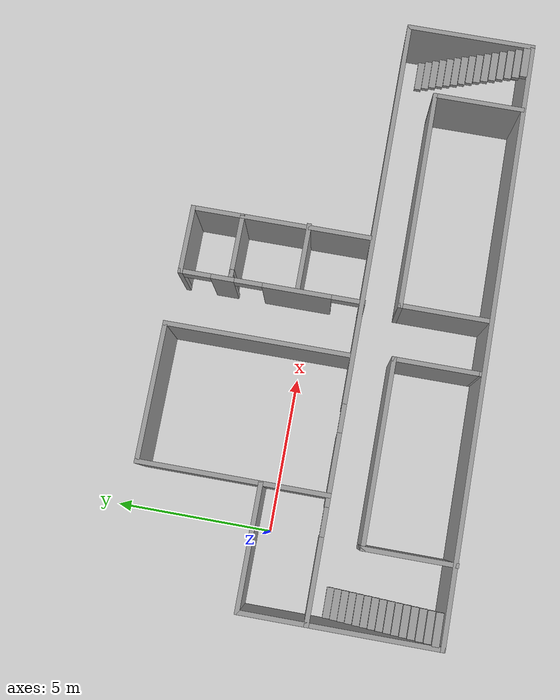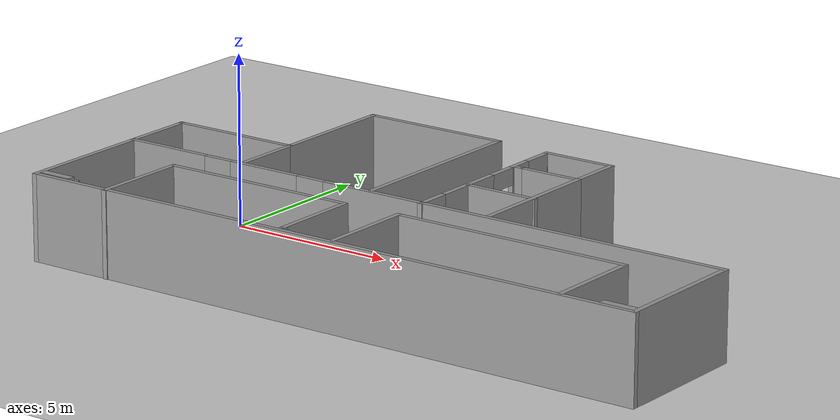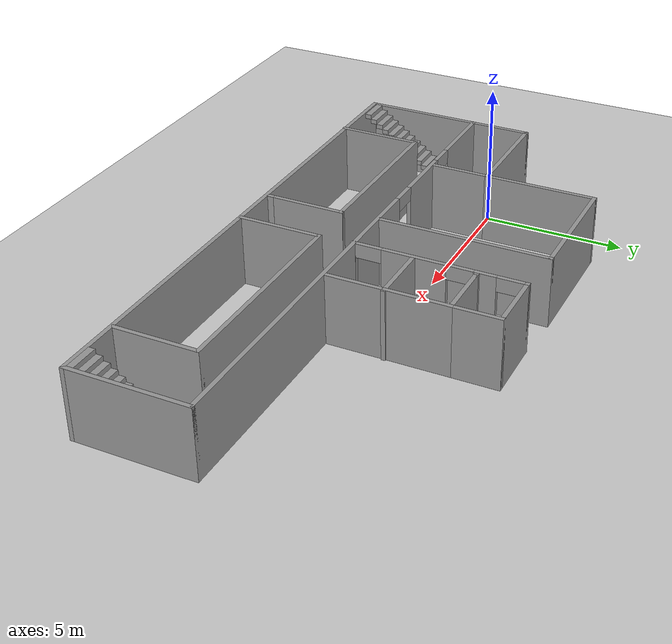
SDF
<?xml version="1.0" ?>
<sdf version="1.4">
  <world name="default">
    <!-- A global light source -->
    <include>
      <uri>model://sun</uri>
    </include>
    <!-- A ground plane -->
    <include>
      <uri>model://ground_plane</uri>
    </include>

    <include>
      <uri>model://LS401</uri>
    </include>

    <!-- Own physics settings to speed up simulation -->
    <physics type='ode'>
      <max_step_size>0.01</max_step_size>
      <real_time_factor>1</real_time_factor>
      <real_time_update_rate>100</real_time_update_rate>
      <gravity>0 0 -9.8</gravity>
    </physics>
  </world>
</sdf>

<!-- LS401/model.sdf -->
<sdf version='1.6'>
  <model name='LS401'>
    <pose frame=''>7.2294 -0.740411 0 0 -0 0</pose>
    <link name='Stairs_0'>
      <visual name='Stairs_0_Visual_0'>
        <pose frame=''>-9.12776 -1.50524 0.083333 0 -0 0</pose>
        <geometry>
          <box>
            <size>1 0.233333 0.166667</size>
          </box>
        </geometry>
        <material>
          <script>
            <uri>file://media/materials/scripts/gazebo.material</uri>
            <name>Gazebo/Grey</name>
          </script>
          <ambient>1 1 1 1</ambient>
        </material>
      </visual>
      <collision name='Stairs_0_Collision_0'>
        <geometry>
          <box>
            <size>1 0.233333 0.166667</size>
          </box>
        </geometry>
        <pose frame=''>-9.12776 -1.50524 0.083333 0 -0 0</pose>
      </collision>
      <visual name='Stairs_0_Visual_1'>
        <pose frame=''>-9.12776 -1.73857 0.25 0 -0 0</pose>
        <geometry>
          <box>
            <size>1 0.233333 0.166667</size>
          </box>
        </geometry>
        <material>
          <script>
            <uri>file://media/materials/scripts/gazebo.material</uri>
            <name>Gazebo/Grey</name>
          </script>
          <ambient>1 1 1 1</ambient>
        </material>
      </visual>
      <collision name='Stairs_0_Collision_1'>
        <geometry>
          <box>
            <size>1 0.233333 0.166667</size>
          </box>
        </geometry>
        <pose frame=''>-9.12776 -1.73857 0.25 0 -0 0</pose>
      </collision>
      <visual name='Stairs_0_Visual_2'>
        <pose frame=''>-9.12776 -1.9719 0.416667 0 -0 0</pose>
        <geometry>
          <box>
            <size>1 0.233333 0.166667</size>
          </box>
        </geometry>
        <material>
          <script>
            <uri>file://media/materials/scripts/gazebo.material</uri>
            <name>Gazebo/Grey</name>
          </script>
          <ambient>1 1 1 1</ambient>
        </material>
      </visual>
      <collision name='Stairs_0_Collision_2'>
        <geometry>
          <box>
            <size>1 0.233333 0.166667</size>
          </box>
        </geometry>
        <pose frame=''>-9.12776 -1.9719 0.416667 0 -0 0</pose>
      </collision>
      <visual name='Stairs_0_Visual_3'>
        <pose frame=''>-9.12776 -2.20524 0.583333 0 -0 0</pose>
        <geometry>
          <box>
            <size>1 0.233333 0.166667</size>
          </box>
        </geometry>
        <material>
          <script>
            <uri>file://media/materials/scripts/gazebo.material</uri>
            <name>Gazebo/Grey</name>
          </script>
          <ambient>1 1 1 1</ambient>
        </material>
      </visual>
      <collision name='Stairs_0_Collision_3'>
        <geometry>
          <box>
            <size>1 0.233333 0.166667</size>
          </box>
        </geometry>
        <pose frame=''>-9.12776 -2.20524 0.583333 0 -0 0</pose>
      </collision>
      <visual name='Stairs_0_Visual_4'>
        <pose frame=''>-9.12776 -2.43857 0.75 0 -0 0</pose>
        <geometry>
          <box>
            <size>1 0.233333 0.166667</size>
          </box>
        </geometry>
        <material>
          <script>
            <uri>file://media/materials/scripts/gazebo.material</uri>
            <name>Gazebo/Grey</name>
          </script>
          <ambient>1 1 1 1</ambient>
        </material>
      </visual>
      <collision name='Stairs_0_Collision_4'>
        <geometry>
          <box>
            <size>1 0.233333 0.166667</size>
          </box>
        </geometry>
        <pose frame=''>-9.12776 -2.43857 0.75 0 -0 0</pose>
      </collision>
      <visual name='Stairs_0_Visual_5'>
        <pose frame=''>-9.12776 -2.6719 0.916667 0 -0 0</pose>
        <geometry>
          <box>
            <size>1 0.233333 0.166667</size>
          </box>
        </geometry>
        <material>
          <script>
            <uri>file://media/materials/scripts/gazebo.material</uri>
            <name>Gazebo/Grey</name>
          </script>
          <ambient>1 1 1 1</ambient>
        </material>
      </visual>
      <collision name='Stairs_0_Collision_5'>
        <geometry>
          <box>
            <size>1 0.233333 0.166667</size>
          </box>
        </geometry>
        <pose frame=''>-9.12776 -2.6719 0.916667 0 -0 0</pose>
      </collision>
      <visual name='Stairs_0_Visual_6'>
        <pose frame=''>-9.12776 -2.90524 1.08333 0 -0 0</pose>
        <geometry>
          <box>
            <size>1 0.233333 0.166667</size>
          </box>
        </geometry>
        <material>
          <script>
            <uri>file://media/materials/scripts/gazebo.material</uri>
            <name>Gazebo/Grey</name>
          </script>
          <ambient>1 1 1 1</ambient>
        </material>
      </visual>
      <collision name='Stairs_0_Collision_6'>
        <geometry>
          <box>
            <size>1 0.233333 0.166667</size>
          </box>
        </geometry>
        <pose frame=''>-9.12776 -2.90524 1.08333 0 -0 0</pose>
      </collision>
      <visual name='Stairs_0_Visual_7'>
        <pose frame=''>-9.12776 -3.13857 1.25 0 -0 0</pose>
        <geometry>
          <box>
            <size>1 0.233333 0.166667</size>
          </box>
        </geometry>
        <material>
          <script>
            <uri>file://media/materials/scripts/gazebo.material</uri>
            <name>Gazebo/Grey</name>
          </script>
          <ambient>1 1 1 1</ambient>
        </material>
      </visual>
      <collision name='Stairs_0_Collision_7'>
        <geometry>
          <box>
            <size>1 0.233333 0.166667</size>
          </box>
        </geometry>
        <pose frame=''>-9.12776 -3.13857 1.25 0 -0 0</pose>
      </collision>
      <visual name='Stairs_0_Visual_8'>
        <pose frame=''>-9.12776 -3.3719 1.41667 0 -0 0</pose>
        <geometry>
          <box>
            <size>1 0.233333 0.166667</size>
          </box>
        </geometry>
        <material>
          <script>
            <uri>file://media/materials/scripts/gazebo.material</uri>
            <name>Gazebo/Grey</name>
          </script>
          <ambient>1 1 1 1</ambient>
        </material>
      </visual>
      <collision name='Stairs_0_Collision_8'>
        <geometry>
          <box>
            <size>1 0.233333 0.166667</size>
          </box>
        </geometry>
        <pose frame=''>-9.12776 -3.3719 1.41667 0 -0 0</pose>
      </collision>
      <visual name='Stairs_0_Visual_9'>
        <pose frame=''>-9.12776 -3.60524 1.58333 0 -0 0</pose>
        <geometry>
          <box>
            <size>1 0.233333 0.166667</size>
          </box>
        </geometry>
        <material>
          <script>
            <uri>file://media/materials/scripts/gazebo.material</uri>
            <name>Gazebo/Grey</name>
          </script>
          <ambient>1 1 1 1</ambient>
        </material>
      </visual>
      <collision name='Stairs_0_Collision_9'>
        <geometry>
          <box>
            <size>1 0.233333 0.166667</size>
          </box>
        </geometry>
        <pose frame=''>-9.12776 -3.60524 1.58333 0 -0 0</pose>
      </collision>
      <visual name='Stairs_0_Visual_10'>
        <pose frame=''>-9.12776 -3.83857 1.75 0 -0 0</pose>
        <geometry>
          <box>
            <size>1 0.233333 0.166667</size>
          </box>
        </geometry>
        <material>
          <script>
            <uri>file://media/materials/scripts/gazebo.material</uri>
            <name>Gazebo/Grey</name>
          </script>
          <ambient>1 1 1 1</ambient>
        </material>
      </visual>
      <collision name='Stairs_0_Collision_10'>
        <geometry>
          <box>
            <size>1 0.233333 0.166667</size>
          </box>
        </geometry>
        <pose frame=''>-9.12776 -3.83857 1.75 0 -0 0</pose>
      </collision>
      <visual name='Stairs_0_Visual_11'>
        <pose frame=''>-9.12776 -4.0719 1.91667 0 -0 0</pose>
        <geometry>
          <box>
            <size>1 0.233333 0.166667</size>
          </box>
        </geometry>
        <material>
          <script>
            <uri>file://media/materials/scripts/gazebo.material</uri>
            <name>Gazebo/Grey</name>
          </script>
          <ambient>1 1 1 1</ambient>
        </material>
      </visual>
      <collision name='Stairs_0_Collision_11'>
        <geometry>
          <box>
            <size>1 0.233333 0.166667</size>
          </box>
        </geometry>
        <pose frame=''>-9.12776 -4.0719 1.91667 0 -0 0</pose>
      </collision>
      <visual name='Stairs_0_Visual_12'>
        <pose frame=''>-9.12776 -4.30524 2.08333 0 -0 0</pose>
        <geometry>
          <box>
            <size>1 0.233333 0.166667</size>
          </box>
        </geometry>
        <material>
          <script>
            <uri>file://media/materials/scripts/gazebo.material</uri>
            <name>Gazebo/Grey</name>
          </script>
          <ambient>1 1 1 1</ambient>
        </material>
      </visual>
      <collision name='Stairs_0_Collision_12'>
        <geometry>
          <box>
            <size>1 0.233333 0.166667</size>
          </box>
        </geometry>
        <pose frame=''>-9.12776 -4.30524 2.08333 0 -0 0</pose>
      </collision>
      <visual name='Stairs_0_Visual_13'>
        <pose frame=''>-9.12776 -4.53857 2.25 0 -0 0</pose>
        <geometry>
          <box>
            <size>1 0.233333 0.166667</size>
          </box>
        </geometry>
        <material>
          <script>
            <uri>file://media/materials/scripts/gazebo.material</uri>
            <name>Gazebo/Grey</name>
          </script>
          <ambient>1 1 1 1</ambient>
        </material>
      </visual>
      <collision name='Stairs_0_Collision_13'>
        <geometry>
          <box>
            <size>1 0.233333 0.166667</size>
          </box>
        </geometry>
        <pose frame=''>-9.12776 -4.53857 2.25 0 -0 0</pose>
      </collision>
      <visual name='Stairs_0_Visual_14'>
        <pose frame=''>-9.12776 -4.7719 2.41667 0 -0 0</pose>
        <geometry>
          <box>
            <size>1 0.233333 0.166667</size>
          </box>
        </geometry>
        <material>
          <script>
            <uri>file://media/materials/scripts/gazebo.material</uri>
            <name>Gazebo/Grey</name>
          </script>
          <ambient>1 1 1 1</ambient>
        </material>
      </visual>
      <collision name='Stairs_0_Collision_14'>
        <geometry>
          <box>
            <size>1 0.233333 0.166667</size>
          </box>
        </geometry>
        <pose frame=''>-9.12776 -4.7719 2.41667 0 -0 0</pose>
      </collision>
    </link>
    <link name='Stairs_1'>
      <visual name='Stairs_1_Visual_0'>
        <pose frame=''>9.09916 -1.57463 0.083333 0 -0 0</pose>
        <geometry>
          <box>
            <size>1 0.233333 0.166667</size>
          </box>
        </geometry>
        <material>
          <script>
            <uri>file://media/materials/scripts/gazebo.material</uri>
            <name>Gazebo/Grey</name>
          </script>
          <ambient>1 1 1 1</ambient>
        </material>
      </visual>
      <collision name='Stairs_1_Collision_0'>
        <geometry>
          <box>
            <size>1 0.233333 0.166667</size>
          </box>
        </geometry>
        <pose frame=''>9.09916 -1.57463 0.083333 0 -0 0</pose>
      </collision>
      <visual name='Stairs_1_Visual_1'>
        <pose frame=''>9.09916 -1.80796 0.25 0 -0 0</pose>
        <geometry>
          <box>
            <size>1 0.233333 0.166667</size>
          </box>
        </geometry>
        <material>
          <script>
            <uri>file://media/materials/scripts/gazebo.material</uri>
            <name>Gazebo/Grey</name>
          </script>
          <ambient>1 1 1 1</ambient>
        </material>
      </visual>
      <collision name='Stairs_1_Collision_1'>
        <geometry>
          <box>
            <size>1 0.233333 0.166667</size>
          </box>
        </geometry>
        <pose frame=''>9.09916 -1.80796 0.25 0 -0 0</pose>
      </collision>
      <visual name='Stairs_1_Visual_2'>
        <pose frame=''>9.09916 -2.04129 0.416667 0 -0 0</pose>
        <geometry>
          <box>
            <size>1 0.233333 0.166667</size>
          </box>
        </geometry>
        <material>
          <script>
            <uri>file://media/materials/scripts/gazebo.material</uri>
            <name>Gazebo/Grey</name>
          </script>
          <ambient>1 1 1 1</ambient>
        </material>
      </visual>
      <collision name='Stairs_1_Collision_2'>
        <geometry>
          <box>
            <size>1 0.233333 0.166667</size>
          </box>
        </geometry>
        <pose frame=''>9.09916 -2.04129 0.416667 0 -0 0</pose>
      </collision>
      <visual name='Stairs_1_Visual_3'>
        <pose frame=''>9.09916 -2.27463 0.583333 0 -0 0</pose>
        <geometry>
          <box>
            <size>1 0.233333 0.166667</size>
          </box>
        </geometry>
        <material>
          <script>
            <uri>file://media/materials/scripts/gazebo.material</uri>
            <name>Gazebo/Grey</name>
          </script>
          <ambient>1 1 1 1</ambient>
        </material>
      </visual>
      <collision name='Stairs_1_Collision_3'>
        <geometry>
          <box>
            <size>1 0.233333 0.166667</size>
          </box>
        </geometry>
        <pose frame=''>9.09916 -2.27463 0.583333 0 -0 0</pose>
      </collision>
      <visual name='Stairs_1_Visual_4'>
        <pose frame=''>9.09916 -2.50796 0.75 0 -0 0</pose>
        <geometry>
          <box>
            <size>1 0.233333 0.166667</size>
          </box>
        </geometry>
        <material>
          <script>
            <uri>file://media/materials/scripts/gazebo.material</uri>
            <name>Gazebo/Grey</name>
          </script>
          <ambient>1 1 1 1</ambient>
        </material>
      </visual>
      <collision name='Stairs_1_Collision_4'>
        <geometry>
          <box>
            <size>1 0.233333 0.166667</size>
          </box>
        </geometry>
        <pose frame=''>9.09916 -2.50796 0.75 0 -0 0</pose>
      </collision>
      <visual name='Stairs_1_Visual_5'>
        <pose frame=''>9.09916 -2.7413 0.916667 0 -0 0</pose>
        <geometry>
          <box>
            <size>1 0.233333 0.166667</size>
          </box>
        </geometry>
        <material>
          <script>
            <uri>file://media/materials/scripts/gazebo.material</uri>
            <name>Gazebo/Grey</name>
          </script>
          <ambient>1 1 1 1</ambient>
        </material>
      </visual>
      <collision name='Stairs_1_Collision_5'>
        <geometry>
          <box>
            <size>1 0.233333 0.166667</size>
          </box>
        </geometry>
        <pose frame=''>9.09916 -2.7413 0.916667 0 -0 0</pose>
      </collision>
      <visual name='Stairs_1_Visual_6'>
        <pose frame=''>9.09916 -2.97463 1.08333 0 -0 0</pose>
        <geometry>
          <box>
            <size>1 0.233333 0.166667</size>
          </box>
        </geometry>
        <material>
          <script>
            <uri>file://media/materials/scripts/gazebo.material</uri>
            <name>Gazebo/Grey</name>
          </script>
          <ambient>1 1 1 1</ambient>
        </material>
      </visual>
      <collision name='Stairs_1_Collision_6'>
        <geometry>
          <box>
            <size>1 0.233333 0.166667</size>
          </box>
        </geometry>
        <pose frame=''>9.09916 -2.97463 1.08333 0 -0 0</pose>
      </collision>
      <visual name='Stairs_1_Visual_7'>
        <pose frame=''>9.09916 -3.20796 1.25 0 -0 0</pose>
        <geometry>
          <box>
            <size>1 0.233333 0.166667</size>
          </box>
        </geometry>
        <material>
          <script>
            <uri>file://media/materials/scripts/gazebo.material</uri>
            <name>Gazebo/Grey</name>
          </script>
          <ambient>1 1 1 1</ambient>
        </material>
      </visual>
      <collision name='Stairs_1_Collision_7'>
        <geometry>
          <box>
            <size>1 0.233333 0.166667</size>
          </box>
        </geometry>
        <pose frame=''>9.09916 -3.20796 1.25 0 -0 0</pose>
      </collision>
      <visual name='Stairs_1_Visual_8'>
        <pose frame=''>9.09916 -3.4413 1.41667 0 -0 0</pose>
        <geometry>
          <box>
            <size>1 0.233333 0.166667</size>
          </box>
        </geometry>
        <material>
          <script>
            <uri>file://media/materials/scripts/gazebo.material</uri>
            <name>Gazebo/Grey</name>
          </script>
          <ambient>1 1 1 1</ambient>
        </material>
      </visual>
      <collision name='Stairs_1_Collision_8'>
        <geometry>
          <box>
            <size>1 0.233333 0.166667</size>
          </box>
        </geometry>
        <pose frame=''>9.09916 -3.4413 1.41667 0 -0 0</pose>
      </collision>
      <visual name='Stairs_1_Visual_9'>
        <pose frame=''>9.09916 -3.67463 1.58333 0 -0 0</pose>
        <geometry>
          <box>
            <size>1 0.233333 0.166667</size>
          </box>
        </geometry>
        <material>
          <script>
            <uri>file://media/materials/scripts/gazebo.material</uri>
            <name>Gazebo/Grey</name>
          </script>
          <ambient>1 1 1 1</ambient>
        </material>
      </visual>
      <collision name='Stairs_1_Collision_9'>
        <geometry>
          <box>
            <size>1 0.233333 0.166667</size>
          </box>
        </geometry>
        <pose frame=''>9.09916 -3.67463 1.58333 0 -0 0</pose>
      </collision>
      <visual name='Stairs_1_Visual_10'>
        <pose frame=''>9.09916 -3.90796 1.75 0 -0 0</pose>
        <geometry>
          <box>
            <size>1 0.233333 0.166667</size>
          </box>
        </geometry>
        <material>
          <script>
            <uri>file://media/materials/scripts/gazebo.material</uri>
            <name>Gazebo/Grey</name>
          </script>
          <ambient>1 1 1 1</ambient>
        </material>
      </visual>
      <collision name='Stairs_1_Collision_10'>
        <geometry>
          <box>
            <size>1 0.233333 0.166667</size>
          </box>
        </geometry>
        <pose frame=''>9.09916 -3.90796 1.75 0 -0 0</pose>
      </collision>
      <visual name='Stairs_1_Visual_11'>
        <pose frame=''>9.09916 -4.1413 1.91667 0 -0 0</pose>
        <geometry>
          <box>
            <size>1 0.233333 0.166667</size>
          </box>
        </geometry>
        <material>
          <script>
            <uri>file://media/materials/scripts/gazebo.material</uri>
            <name>Gazebo/Grey</name>
          </script>
          <ambient>1 1 1 1</ambient>
        </material>
      </visual>
      <collision name='Stairs_1_Collision_11'>
        <geometry>
          <box>
            <size>1 0.233333 0.166667</size>
          </box>
        </geometry>
        <pose frame=''>9.09916 -4.1413 1.91667 0 -0 0</pose>
      </collision>
      <visual name='Stairs_1_Visual_12'>
        <pose frame=''>9.09916 -4.37463 2.08333 0 -0 0</pose>
        <geometry>
          <box>
            <size>1 0.233333 0.166667</size>
          </box>
        </geometry>
        <material>
          <script>
            <uri>file://media/materials/scripts/gazebo.material</uri>
            <name>Gazebo/Grey</name>
          </script>
          <ambient>1 1 1 1</ambient>
        </material>
      </visual>
      <collision name='Stairs_1_Collision_12'>
        <geometry>
          <box>
            <size>1 0.233333 0.166667</size>
          </box>
        </geometry>
        <pose frame=''>9.09916 -4.37463 2.08333 0 -0 0</pose>
      </collision>
      <visual name='Stairs_1_Visual_13'>
        <pose frame=''>9.09916 -4.60796 2.25 0 -0 0</pose>
        <geometry>
          <box>
            <size>1 0.233333 0.166667</size>
          </box>
        </geometry>
        <material>
          <script>
            <uri>file://media/materials/scripts/gazebo.material</uri>
            <name>Gazebo/Grey</name>
          </script>
          <ambient>1 1 1 1</ambient>
        </material>
      </visual>
      <collision name='Stairs_1_Collision_13'>
        <geometry>
          <box>
            <size>1 0.233333 0.166667</size>
          </box>
        </geometry>
        <pose frame=''>9.09916 -4.60796 2.25 0 -0 0</pose>
      </collision>
      <visual name='Stairs_1_Visual_14'>
        <pose frame=''>9.09916 -4.84129 2.41667 0 -0 0</pose>
        <geometry>
          <box>
            <size>1 0.233333 0.166667</size>
          </box>
        </geometry>
        <material>
          <script>
            <uri>file://media/materials/scripts/gazebo.material</uri>
            <name>Gazebo/Grey</name>
          </script>
          <ambient>1 1 1 1</ambient>
        </material>
      </visual>
      <collision name='Stairs_1_Collision_14'>
        <geometry>
          <box>
            <size>1 0.233333 0.166667</size>
          </box>
        </geometry>
        <pose frame=''>9.09916 -4.84129 2.41667 0 -0 0</pose>
      </collision>
    </link>
    <link name='Wall_0'>
      <pose frame=''>0 -0.91168 0 0 -0 0</pose>
      <visual name='Wall_0_Visual_0'>
        <pose frame=''>-8.41483 0 1.25 0 -0 0</pose>
        <geometry>
          <box>
            <size>2.67035 0.15 2.5</size>
          </box>
        </geometry>
        <material>
          <script>
            <uri>file://media/materials/scripts/gazebo.material</uri>
            <name>Gazebo/Grey</name>
          </script>
          <ambient>1 1 1 1</ambient>
        </material>
      </visual>
      <collision name='Wall_0_Collision_0'>
        <geometry>
          <box>
            <size>2.67035 0.15 2.5</size>
          </box>
        </geometry>
        <pose frame=''>-8.41483 0 1.25 0 -0 0</pose>
      </collision>
      <visual name='Wall_0_Visual_1'>
        <pose frame=''>-5.0381 0 1.25 0 -0 0</pose>
        <geometry>
          <box>
            <size>2.28311 0.15 2.5</size>
          </box>
        </geometry>
        <material>
          <script>
            <uri>file://media/materials/scripts/gazebo.material</uri>
            <name>Gazebo/Grey</name>
          </script>
          <ambient>1 1 1 1</ambient>
        </material>
      </visual>
      <collision name='Wall_0_Collision_1'>
        <geometry>
          <box>
            <size>2.28311 0.15 2.5</size>
          </box>
        </geometry>
        <pose frame=''>-5.0381 0 1.25 0 -0 0</pose>
      </collision>
      <visual name='Wall_0_Visual_2'>
        <pose frame=''>3.37673 0 1.25 0 -0 0</pose>
        <geometry>
          <box>
            <size>12.7465 0.15 2.5</size>
          </box>
        </geometry>
        <material>
          <script>
            <uri>file://media/materials/scripts/gazebo.material</uri>
            <name>Gazebo/Grey</name>
          </script>
          <ambient>1 1 1 1</ambient>
        </material>
      </visual>
      <collision name='Wall_0_Collision_2'>
        <geometry>
          <box>
            <size>12.7465 0.15 2.5</size>
          </box>
        </geometry>
        <pose frame=''>3.37673 0 1.25 0 -0 0</pose>
      </collision>
      <visual name='Wall_0_Visual_3'>
        <pose frame=''>-6.62965 0 2.25 0 -0 0</pose>
        <geometry>
          <box>
            <size>0.9 0.15 0.5</size>
          </box>
        </geometry>
        <material>
          <script>
            <uri>file://media/materials/scripts/gazebo.material</uri>
            <name>Gazebo/Grey</name>
          </script>
          <ambient>1 1 1 1</ambient>
        </material>
      </visual>
      <collision name='Wall_0_Collision_3'>
        <geometry>
          <box>
            <size>0.9 0.15 0.5</size>
          </box>
        </geometry>
        <pose frame=''>-6.62965 0 2.25 0 -0 0</pose>
      </collision>
      <visual name='Wall_0_Visual_4'>
        <pose frame=''>-3.44654 0 2.25 0 -0 0</pose>
        <geometry>
          <box>
            <size>0.9 0.15 0.5</size>
          </box>
        </geometry>
        <material>
          <script>
            <uri>file://media/materials/scripts/gazebo.material</uri>
            <name>Gazebo/Grey</name>
          </script>
          <ambient>1 1 1 1</ambient>
        </material>
      </visual>
      <collision name='Wall_0_Collision_4'>
        <geometry>
          <box>
            <size>0.9 0.15 0.5</size>
          </box>
        </geometry>
        <pose frame=''>-3.44654 0 2.25 0 -0 0</pose>
      </collision>
    </link>
    <link name='Wall_1'>
      <collision name='Wall_1_Collision'>
        <geometry>
          <box>
            <size>4.25 0.15 2.5</size>
          </box>
        </geometry>
        <pose frame=''>0 0 1.25 0 -0 0</pose>
      </collision>
      <visual name='Wall_1_Visual'>
        <pose frame=''>0 0 1.25 0 -0 0</pose>
        <geometry>
          <box>
            <size>4.25 0.15 2.5</size>
          </box>
        </geometry>
        <material>
          <script>
            <uri>file://media/materials/scripts/gazebo.material</uri>
            <name>Gazebo/Grey</name>
          </script>
          <ambient>1 1 1 1</ambient>
        </material>
      </visual>
      <pose frame=''>9.675 -2.96168 0 0 0 -1.5708</pose>
    </link>
    <link name='Wall_10'>
      <collision name='Wall_10_Collision'>
        <geometry>
          <box>
            <size>4.5 0.15 2.5</size>
          </box>
        </geometry>
        <pose frame=''>0 0 1.25 0 -0 0</pose>
      </collision>
      <visual name='Wall_10_Visual'>
        <pose frame=''>0 0 1.25 0 -0 0</pose>
        <geometry>
          <box>
            <size>4.5 0.15 2.5</size>
          </box>
        </geometry>
        <material>
          <script>
            <uri>file://media/materials/scripts/gazebo.material</uri>
            <name>Gazebo/Grey</name>
          </script>
          <ambient>1 1 1 1</ambient>
        </material>
      </visual>
      <pose frame=''>-3.65 5.03832 0 0 -0 0</pose>
    </link>
    <link name='Wall_11'>
      <collision name='Wall_11_Collision'>
        <geometry>
          <box>
            <size>6 0.15 2.5</size>
          </box>
        </geometry>
        <pose frame=''>0 0 1.25 0 -0 0</pose>
      </collision>
      <visual name='Wall_11_Visual'>
        <pose frame=''>0 0 1.25 0 -0 0</pose>
        <geometry>
          <box>
            <size>6 0.15 2.5</size>
          </box>
        </geometry>
        <material>
          <script>
            <uri>file://media/materials/scripts/gazebo.material</uri>
            <name>Gazebo/Grey</name>
          </script>
          <ambient>1 1 1 1</ambient>
        </material>
      </visual>
      <pose frame=''>-1.475 2.11332 0 0 0 -1.5708</pose>
    </link>
    <link name='Wall_13'>
      <pose frame=''>0.250884 1.98311 0 0 -0 1.5708</pose>
      <visual name='Wall_13_Visual_0'>
        <pose frame=''>-2.9082 0 1.25 0 -0 0</pose>
        <geometry>
          <box>
            <size>0.183604 0.15 2.5</size>
          </box>
        </geometry>
        <material>
          <script>
            <uri>file://media/materials/scripts/gazebo.material</uri>
            <name>Gazebo/Grey</name>
          </script>
          <ambient>1 1 1 1</ambient>
        </material>
      </visual>
      <collision name='Wall_13_Collision_0'>
        <geometry>
          <box>
            <size>0.183604 0.15 2.5</size>
          </box>
        </geometry>
        <pose frame=''>-2.9082 0 1.25 0 -0 0</pose>
      </collision>
      <visual name='Wall_13_Visual_1'>
        <pose frame=''>-0.810284 0 1.25 0 -0 0</pose>
        <geometry>
          <box>
            <size>2.21222 0.15 2.5</size>
          </box>
        </geometry>
        <material>
          <script>
            <uri>file://media/materials/scripts/gazebo.material</uri>
            <name>Gazebo/Grey</name>
          </script>
          <ambient>1 1 1 1</ambient>
        </material>
      </visual>
      <collision name='Wall_13_Collision_1'>
        <geometry>
          <box>
            <size>2.21222 0.15 2.5</size>
          </box>
        </geometry>
        <pose frame=''>-0.810284 0 1.25 0 -0 0</pose>
      </collision>
      <visual name='Wall_13_Visual_2'>
        <pose frame=''>1.57043 0 1.25 0 -0 0</pose>
        <geometry>
          <box>
            <size>0.749212 0.15 2.5</size>
          </box>
        </geometry>
        <material>
          <script>
            <uri>file://media/materials/scripts/gazebo.material</uri>
            <name>Gazebo/Grey</name>
          </script>
          <ambient>1 1 1 1</ambient>
        </material>
      </visual>
      <collision name='Wall_13_Collision_2'>
        <geometry>
          <box>
            <size>0.749212 0.15 2.5</size>
          </box>
        </geometry>
        <pose frame=''>1.57043 0 1.25 0 -0 0</pose>
      </collision>
      <visual name='Wall_13_Visual_3'>
        <pose frame=''>2.92252 0 1.25 0 -0 0</pose>
        <geometry>
          <box>
            <size>0.15496 0.15 2.5</size>
          </box>
        </geometry>
        <material>
          <script>
            <uri>file://media/materials/scripts/gazebo.material</uri>
            <name>Gazebo/Grey</name>
          </script>
          <ambient>1 1 1 1</ambient>
        </material>
      </visual>
      <collision name='Wall_13_Collision_3'>
        <geometry>
          <box>
            <size>0.15496 0.15 2.5</size>
          </box>
        </geometry>
        <pose frame=''>2.92252 0 1.25 0 -0 0</pose>
      </collision>
      <visual name='Wall_13_Visual_4'>
        <pose frame=''>-2.3664 0 2.25 0 -0 0</pose>
        <geometry>
          <box>
            <size>0.9 0.15 0.5</size>
          </box>
        </geometry>
        <material>
          <script>
            <uri>file://media/materials/scripts/gazebo.material</uri>
            <name>Gazebo/Grey</name>
          </script>
          <ambient>1 1 1 1</ambient>
        </material>
      </visual>
      <collision name='Wall_13_Collision_4'>
        <geometry>
          <box>
            <size>0.9 0.15 0.5</size>
          </box>
        </geometry>
        <pose frame=''>-2.3664 0 2.25 0 -0 0</pose>
      </collision>
      <visual name='Wall_13_Visual_5'>
        <pose frame=''>0.745827 0 2.25 0 -0 0</pose>
        <geometry>
          <box>
            <size>0.9 0.15 0.5</size>
          </box>
        </geometry>
        <material>
          <script>
            <uri>file://media/materials/scripts/gazebo.material</uri>
            <name>Gazebo/Grey</name>
          </script>
          <ambient>1 1 1 1</ambient>
        </material>
      </visual>
      <collision name='Wall_13_Collision_5'>
        <geometry>
          <box>
            <size>0.9 0.15 0.5</size>
          </box>
        </geometry>
        <pose frame=''>0.745827 0 2.25 0 -0 0</pose>
      </collision>
      <visual name='Wall_13_Visual_6'>
        <pose frame=''>2.39504 0 2.25 0 -0 0</pose>
        <geometry>
          <box>
            <size>0.9 0.15 0.5</size>
          </box>
        </geometry>
        <material>
          <script>
            <uri>file://media/materials/scripts/gazebo.material</uri>
            <name>Gazebo/Grey</name>
          </script>
          <ambient>1 1 1 1</ambient>
        </material>
      </visual>
      <collision name='Wall_13_Collision_6'>
        <geometry>
          <box>
            <size>0.9 0.15 0.5</size>
          </box>
        </geometry>
        <pose frame=''>2.39504 0 2.25 0 -0 0</pose>
      </collision>
    </link>
    <link name='Wall_14'>
      <collision name='Wall_14_Collision'>
        <geometry>
          <box>
            <size>2.25 0.15 2.5</size>
          </box>
        </geometry>
        <pose frame=''>0 0 1.25 0 -0 0</pose>
      </collision>
      <visual name='Wall_14_Visual'>
        <pose frame=''>0 0 1.25 0 -0 0</pose>
        <geometry>
          <box>
            <size>2.25 0.15 2.5</size>
          </box>
        </geometry>
        <material>
          <script>
            <uri>file://media/materials/scripts/gazebo.material</uri>
            <name>Gazebo/Grey</name>
          </script>
          <ambient>1 1 1 1</ambient>
        </material>
      </visual>
      <pose frame=''>1.30088 4.90811 0 0 -0 0</pose>
    </link>
    <link name='Wall_15'>
      <collision name='Wall_15_Collision'>
        <geometry>
          <box>
            <size>1.75 0.15 2.5</size>
          </box>
        </geometry>
        <pose frame=''>0 0 1.25 0 -0 0</pose>
      </collision>
      <visual name='Wall_15_Visual'>
        <pose frame=''>0 0 1.25 0 -0 0</pose>
        <geometry>
          <box>
            <size>1.75 0.15 2.5</size>
          </box>
        </geometry>
        <material>
          <script>
            <uri>file://media/materials/scripts/gazebo.material</uri>
            <name>Gazebo/Grey</name>
          </script>
          <ambient>1 1 1 1</ambient>
        </material>
      </visual>
      <pose frame=''>2.35088 4.10811 0 0 0 -1.5708</pose>
    </link>
    <link name='Wall_16'>
      <collision name='Wall_16_Collision'>
        <geometry>
          <box>
            <size>2 0.15 2.5</size>
          </box>
        </geometry>
        <pose frame=''>0 0 1.25 0 -0 0</pose>
      </collision>
      <visual name='Wall_16_Visual'>
        <pose frame=''>0 0 1.25 0 -0 0</pose>
        <geometry>
          <box>
            <size>2 0.15 2.5</size>
          </box>
        </geometry>
        <material>
          <script>
            <uri>file://media/materials/scripts/gazebo.material</uri>
            <name>Gazebo/Grey</name>
          </script>
          <ambient>1 1 1 1</ambient>
        </material>
      </visual>
      <pose frame=''>1.42588 3.30811 0 0 -0 3.14159</pose>
    </link>
    <link name='Wall_17'>
      <collision name='Wall_17_Collision'>
        <geometry>
          <box>
            <size>0.15 0.15 2.5</size>
          </box>
        </geometry>
        <pose frame=''>0 0 1.25 0 -0 0</pose>
      </collision>
      <visual name='Wall_17_Visual'>
        <pose frame=''>0 0 1.25 0 -0 0</pose>
        <geometry>
          <box>
            <size>0.15 0.15 2.5</size>
          </box>
        </geometry>
        <material>
          <script>
            <uri>file://media/materials/scripts/gazebo.material</uri>
            <name>Gazebo/Grey</name>
          </script>
          <ambient>1 1 1 1</ambient>
        </material>
      </visual>
      <pose frame=''>0.500884 3.30811 0 0 -0 0</pose>
    </link>
    <link name='Wall_18'>
      <collision name='Wall_18_Collision'>
        <geometry>
          <box>
            <size>0.25 0.15 2.5</size>
          </box>
        </geometry>
        <pose frame=''>0 0 1.25 0 -0 0</pose>
      </collision>
      <visual name='Wall_18_Visual'>
        <pose frame=''>0 0 1.25 0 -0 0</pose>
        <geometry>
          <box>
            <size>0.25 0.15 2.5</size>
          </box>
        </geometry>
        <material>
          <script>
            <uri>file://media/materials/scripts/gazebo.material</uri>
            <name>Gazebo/Grey</name>
          </script>
          <ambient>1 1 1 1</ambient>
        </material>
      </visual>
      <pose frame=''>0.450884 3.30811 0 0 -0 3.14159</pose>
    </link>
    <link name='Wall_2'>
      <collision name='Wall_2_Collision'>
        <geometry>
          <box>
            <size>19.5 0.15 2.5</size>
          </box>
        </geometry>
        <pose frame=''>0 0 1.25 0 -0 0</pose>
      </collision>
      <visual name='Wall_2_Visual'>
        <pose frame=''>0 0 1.25 0 -0 0</pose>
        <geometry>
          <box>
            <size>19.5 0.15 2.5</size>
          </box>
        </geometry>
        <material>
          <script>
            <uri>file://media/materials/scripts/gazebo.material</uri>
            <name>Gazebo/Grey</name>
          </script>
          <ambient>1 1 1 1</ambient>
        </material>
      </visual>
      <pose frame=''>0 -5.01168 0 0 -0 3.14159</pose>
    </link>
    <link name='Wall_20'>
      <collision name='Wall_20_Collision'>
        <geometry>
          <box>
            <size>2.25 0.15 2.5</size>
          </box>
        </geometry>
        <pose frame=''>0 0 1.25 0 -0 0</pose>
      </collision>
      <visual name='Wall_20_Visual'>
        <pose frame=''>0 0 1.25 0 -0 0</pose>
        <geometry>
          <box>
            <size>2.25 0.15 2.5</size>
          </box>
        </geometry>
        <material>
          <script>
            <uri>file://media/materials/scripts/gazebo.material</uri>
            <name>Gazebo/Grey</name>
          </script>
          <ambient>1 1 1 1</ambient>
        </material>
      </visual>
      <pose frame=''>1.35408 1.15953 0 0 -0 0</pose>
    </link>
    <link name='Wall_22'>
      <collision name='Wall_22_Collision'>
        <geometry>
          <box>
            <size>4.25 0.15 2.5</size>
          </box>
        </geometry>
        <pose frame=''>0 0 1.25 0 -0 0</pose>
      </collision>
      <visual name='Wall_22_Visual'>
        <pose frame=''>0 0 1.25 0 -0 0</pose>
        <geometry>
          <box>
            <size>4.25 0.15 2.5</size>
          </box>
        </geometry>
        <material>
          <script>
            <uri>file://media/materials/scripts/gazebo.material</uri>
            <name>Gazebo/Grey</name>
          </script>
          <ambient>1 1 1 1</ambient>
        </material>
      </visual>
      <pose frame=''>2.35088 1.25811 0 0 0 -1.5708</pose>
    </link>
    <link name='Wall_24'>
      <collision name='Wall_24_Collision'>
        <geometry>
          <box>
            <size>3 0.15 2.5</size>
          </box>
        </geometry>
        <pose frame=''>0 0 1.25 0 -0 0</pose>
      </collision>
      <visual name='Wall_24_Visual'>
        <pose frame=''>0 0 1.25 0 -0 0</pose>
        <geometry>
          <box>
            <size>3 0.15 2.5</size>
          </box>
        </geometry>
        <material>
          <script>
            <uri>file://media/materials/scripts/gazebo.material</uri>
            <name>Gazebo/Grey</name>
          </script>
          <ambient>1 1 1 1</ambient>
        </material>
      </visual>
      <pose frame=''>-7.19717 -3.61332 0 0 -0 1.5708</pose>
    </link>
    <link name='Wall_25'>
      <collision name='Wall_25_Collision'>
        <geometry>
          <box>
            <size>6 0.15 2.5</size>
          </box>
        </geometry>
        <pose frame=''>0 0 1.25 0 -0 0</pose>
      </collision>
      <visual name='Wall_25_Visual'>
        <pose frame=''>0 0 1.25 0 -0 0</pose>
        <geometry>
          <box>
            <size>6 0.15 2.5</size>
          </box>
        </geometry>
        <material>
          <script>
            <uri>file://media/materials/scripts/gazebo.material</uri>
            <name>Gazebo/Grey</name>
          </script>
          <ambient>1 1 1 1</ambient>
        </material>
      </visual>
      <pose frame=''>-4.27217 -2.18832 0 0 -0 0</pose>
    </link>
    <link name='Wall_26'>
      <collision name='Wall_26_Collision'>
        <geometry>
          <box>
            <size>2.75 0.15 2.5</size>
          </box>
        </geometry>
        <pose frame=''>0 0 1.25 0 -0 0</pose>
      </collision>
      <visual name='Wall_26_Visual'>
        <pose frame=''>0 0 1.25 0 -0 0</pose>
        <geometry>
          <box>
            <size>2.75 0.15 2.5</size>
          </box>
        </geometry>
        <material>
          <script>
            <uri>file://media/materials/scripts/gazebo.material</uri>
            <name>Gazebo/Grey</name>
          </script>
          <ambient>1 1 1 1</ambient>
        </material>
      </visual>
      <pose frame=''>-1.34717 -3.48832 0 0 0 -1.5708</pose>
    </link>
    <link name='Wall_27'>
      <collision name='Wall_27_Collision'>
        <geometry>
          <box>
            <size>0.25 0.15 2.5</size>
          </box>
        </geometry>
        <pose frame=''>0 0 1.25 0 -0 0</pose>
      </collision>
      <visual name='Wall_27_Visual'>
        <pose frame=''>0 0 1.25 0 -0 0</pose>
        <geometry>
          <box>
            <size>0.25 0.15 2.5</size>
          </box>
        </geometry>
        <material>
          <script>
            <uri>file://media/materials/scripts/gazebo.material</uri>
            <name>Gazebo/Grey</name>
          </script>
          <ambient>1 1 1 1</ambient>
        </material>
      </visual>
      <pose frame=''>-1.34717 -4.83832 0 0 0 -1.5708</pose>
    </link>
    <link name='Wall_29'>
      <collision name='Wall_29_Collision'>
        <geometry>
          <box>
            <size>3 0.15 2.5</size>
          </box>
        </geometry>
        <pose frame=''>0 0 1.25 0 -0 0</pose>
      </collision>
      <visual name='Wall_29_Visual'>
        <pose frame=''>0 0 1.25 0 -0 0</pose>
        <geometry>
          <box>
            <size>3 0.15 2.5</size>
          </box>
        </geometry>
        <material>
          <script>
            <uri>file://media/materials/scripts/gazebo.material</uri>
            <name>Gazebo/Grey</name>
          </script>
          <ambient>1 1 1 1</ambient>
        </material>
      </visual>
      <pose frame=''>0.357285 -3.5373 0 0 0 -1.5708</pose>
    </link>
    <link name='Wall_3'>
      <collision name='Wall_3_Collision'>
        <geometry>
          <box>
            <size>4.25 0.15 2.5</size>
          </box>
        </geometry>
        <pose frame=''>0 0 1.25 0 -0 0</pose>
      </collision>
      <visual name='Wall_3_Visual'>
        <pose frame=''>0 0 1.25 0 -0 0</pose>
        <geometry>
          <box>
            <size>4.25 0.15 2.5</size>
          </box>
        </geometry>
        <material>
          <script>
            <uri>file://media/materials/scripts/gazebo.material</uri>
            <name>Gazebo/Grey</name>
          </script>
          <ambient>1 1 1 1</ambient>
        </material>
      </visual>
      <pose frame=''>-9.675 -2.96168 0 0 -0 1.5708</pose>
    </link>
    <link name='Wall_31'>
      <collision name='Wall_31_Collision'>
        <geometry>
          <box>
            <size>7.25 0.15 2.5</size>
          </box>
        </geometry>
        <pose frame=''>0 0 1.25 0 -0 0</pose>
      </collision>
      <visual name='Wall_31_Visual'>
        <pose frame=''>0 0 1.25 0 -0 0</pose>
        <geometry>
          <box>
            <size>7.25 0.15 2.5</size>
          </box>
        </geometry>
        <material>
          <script>
            <uri>file://media/materials/scripts/gazebo.material</uri>
            <name>Gazebo/Grey</name>
          </script>
          <ambient>1 1 1 1</ambient>
        </material>
      </visual>
      <pose frame=''>3.90728 -2.1123 0 0 -0 0</pose>
    </link>
    <link name='Wall_32'>
      <collision name='Wall_32_Collision'>
        <geometry>
          <box>
            <size>3 0.15 2.5</size>
          </box>
        </geometry>
        <pose frame=''>0 0 1.25 0 -0 0</pose>
      </collision>
      <visual name='Wall_32_Visual'>
        <pose frame=''>0 0 1.25 0 -0 0</pose>
        <geometry>
          <box>
            <size>3 0.15 2.5</size>
          </box>
        </geometry>
        <material>
          <script>
            <uri>file://media/materials/scripts/gazebo.material</uri>
            <name>Gazebo/Grey</name>
          </script>
          <ambient>1 1 1 1</ambient>
        </material>
      </visual>
      <pose frame=''>7.45728 -3.5373 0 0 0 -1.5708</pose>
    </link>
    <link name='Wall_5'>
      <collision name='Wall_5_Collision'>
        <geometry>
          <box>
            <size>2.25 0.15 2.5</size>
          </box>
        </geometry>
        <pose frame=''>0 0 1.25 0 -0 0</pose>
      </collision>
      <visual name='Wall_5_Visual'>
        <pose frame=''>0 0 1.25 0 -0 0</pose>
        <geometry>
          <box>
            <size>2.25 0.15 2.5</size>
          </box>
        </geometry>
        <material>
          <script>
            <uri>file://media/materials/scripts/gazebo.material</uri>
            <name>Gazebo/Grey</name>
          </script>
          <ambient>1 1 1 1</ambient>
        </material>
      </visual>
      <pose frame=''>-9.675 0.13832 0 0 -0 1.5708</pose>
    </link>
    <link name='Wall_6'>
      <collision name='Wall_6_Collision'>
        <geometry>
          <box>
            <size>4 0.15 2.5</size>
          </box>
        </geometry>
        <pose frame=''>0 0 1.25 0 -0 0</pose>
      </collision>
      <visual name='Wall_6_Visual'>
        <pose frame=''>0 0 1.25 0 -0 0</pose>
        <geometry>
          <box>
            <size>4 0.15 2.5</size>
          </box>
        </geometry>
        <material>
          <script>
            <uri>file://media/materials/scripts/gazebo.material</uri>
            <name>Gazebo/Grey</name>
          </script>
          <ambient>1 1 1 1</ambient>
        </material>
      </visual>
      <pose frame=''>-7.75 1.18832 0 0 -0 0</pose>
    </link>
    <link name='Wall_7'>
      <collision name='Wall_7_Collision'>
        <geometry>
          <box>
            <size>2.25 0.15 2.5</size>
          </box>
        </geometry>
        <pose frame=''>0 0 1.25 0 -0 0</pose>
      </collision>
      <visual name='Wall_7_Visual'>
        <pose frame=''>0 0 1.25 0 -0 0</pose>
        <geometry>
          <box>
            <size>2.25 0.15 2.5</size>
          </box>
        </geometry>
        <material>
          <script>
            <uri>file://media/materials/scripts/gazebo.material</uri>
            <name>Gazebo/Grey</name>
          </script>
          <ambient>1 1 1 1</ambient>
        </material>
      </visual>
      <pose frame=''>-5.825 0.13832 0 0 0 -1.5708</pose>
    </link>
    <link name='Wall_9'>
      <collision name='Wall_9_Collision'>
        <geometry>
          <box>
            <size>4 0.15 2.5</size>
          </box>
        </geometry>
        <pose frame=''>0 0 1.25 0 -0 0</pose>
      </collision>
      <visual name='Wall_9_Visual'>
        <pose frame=''>0 0 1.25 0 -0 0</pose>
        <geometry>
          <box>
            <size>4 0.15 2.5</size>
          </box>
        </geometry>
        <material>
          <script>
            <uri>file://media/materials/scripts/gazebo.material</uri>
            <name>Gazebo/Grey</name>
          </script>
          <ambient>1 1 1 1</ambient>
        </material>
      </visual>
      <pose frame=''>-5.825 3.11332 0 0 -0 1.5708</pose>
    </link>
    <static>1</static>
  </model>
</sdf>
